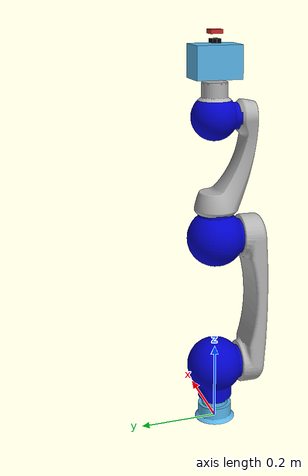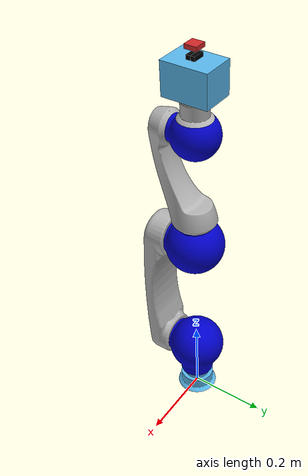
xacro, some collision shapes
<?xml version="1.0" ?>
<!-- |    This document was autogenerated by xacro from lwa4p_pg70.urdf.xacro          | -->
<!-- |    EDITING THIS FILE BY HAND IS NOT RECOMMENDED                                 | -->
<robot name="lwa4p_pg70" xmlns:xacro="http://ros.org/wiki/xacro">
    <material name="Schunk/LightGrey">
    <color rgba="0.7 0.7 0.7 1.0"/>
  </material>
  <material name="Schunk/DarkGrey">
    <color rgba="0.4 0.4 0.4 1.0"/>
  </material>
  <material name="Schunk/Black">
    <color rgba="0.0 0.0 0.0 1.0"/>
  </material>
  <material name="Schunk/DarkGolden">
    <color rgba="0.4 0.4 0.3 1.0"/>
  </material>
  <material name="Schunk/Blue">
    <color rgba="0.0 0.0 0.8 1.0"/>
  </material>
  <!-- Used for fixing robot to Gazebo -->
  <link name="world"/>
  <!-- joint between base_link and lwa4p_extended_connector_link -->
  <joint name="arm_podest_joint" type="fixed">
    <origin rpy="0 0 0" xyz="0 0 0.052"/>
    <parent link="world"/>
    <child link="arm_podest_link"/>
  </joint>
  <link name="arm_podest_link">
    <inertial>
      <mass value="0.01"/>
      <origin xyz="0 0 0"/>
      <inertia ixx="0.001" ixy="0.0" ixz="0.0" iyy="0.001" iyz="0.0" izz="0.001"/>
    </inertial>
    <visual>
      <origin rpy="0 3.141592653589793 0" xyz="0 0 0"/>
      <geometry>
        <mesh filename="package://lwa4p_pg70/urdf/meshes/lwa4p/arm_base_link.dae"/>
      </geometry>
    </visual>
    <collision>
      <origin rpy="0 3.141592653589793 0" xyz="0 0 0"/>
      <geometry>
        <mesh filename="package://lwa4p_pg70/urdf/meshes/lwa4p/arm_base_link.dae"/>
      </geometry>
    </collision>
  </link>
  <joint name="arm_base_joint" type="fixed">
    <origin rpy="0 0 0" xyz="0 0 0.10"/>
    <parent link="arm_podest_link"/>
    <child link="arm_base_link"/>
  </joint>
  <link name="arm_base_link">
    <inertial>
      <mass value="0.01"/>
      <origin xyz="0 0 0"/>
      <inertia ixx="0.001" ixy="0.0" ixz="0.0" iyy="0.001" iyz="0.0" izz="0.001"/>
    </inertial>
  </link>
  <!-- joint between arm_0_link and arm_1_link -->
  <joint name="arm_1_joint" type="revolute">
    <origin rpy="0 0 0" xyz="0 0 0"/>
    <parent link="arm_base_link"/>
    <child link="arm_1_link"/>
    <axis xyz="0 0 1"/>
    <limit effort="370" lower="-2.947" upper="2.947" velocity="1.26"/>
    <!--safety_controller k_position="20" k_velocity="50" soft_lower_limit="${-6.28 + 0.01}" soft_upper_limit="${6.28 - 0.01}" /-->
  </joint>
  <link name="arm_1_link">

      <inertial>
        <origin xyz="0 0 0" rpy="0 0 0" />
        <mass value="0.29364"/>
        <inertia ixx="0.01" ixy="0" ixz="0" iyy="0.01" iyz="0" izz="0.01" />
      </inertial>

    <visual>
      <origin rpy="0 0 0" xyz="0 0 0"/>
      <geometry>
        <mesh filename="package://lwa4p_pg70/urdf/meshes/lwa4p/arm_1_link.dae"/>
      </geometry>
      <material name="Schunk/Blue"/>
    </visual>
    <collision>
      <origin rpy="0 0 0" xyz="0 0 0"/>
      <geometry>
        <mesh filename="package://lwa4p_pg70/urdf/meshes/lwa4p/arm_1_link.dae"/>
      </geometry>
    </collision>
  </link>
  <!-- joint between arm_1_link and arm_2_link -->
  <joint name="arm_2_joint" type="revolute">
    <origin rpy="1.5708 0 0" xyz="0 0 0"/>
    <parent link="arm_1_link"/>
    <child link="arm_2_link"/>
    <axis xyz="0 0 1"/>
    <limit effort="370" lower="-2.947" upper="2.947" velocity="1.26"/>
    <!--safety_controller k_position="20" k_velocity="50" soft_lower_limit="${-2.09 + 0.01}" soft_upper_limit="${2.09 - 0.01}" /-->
  </joint>
  <link name="arm_2_link">

      <inertial>
        <origin xyz="0 0 0" rpy="0 0 0"/>
        <mass value="1.68311"/>
        <inertia ixx="0.03" ixy="0" ixz="0" iyy="0.03" iyz="0" izz="0.03" />
      </inertial>

    <visual>
      <origin rpy="0 0 0" xyz="0 0 0"/>
      <geometry>
        <mesh filename="package://lwa4p_pg70/urdf/meshes/lwa4p/arm_2_link.dae"/>
      </geometry>
      <material name="Schunk/LightGrey"/>
    </visual>
    <collision>
      <origin rpy="0 0 0" xyz="0 0 0"/>
      <geometry>
        <mesh filename="package://lwa4p_pg70/urdf/meshes/lwa4p/arm_2_link.dae"/>
      </geometry>
    </collision>
  </link>
  <!-- joint between arm_2_link and arm_3_link -->
  <joint name="arm_3_joint" type="revolute">
    <origin rpy="0 3.14159 0" xyz="0 0.350 0"/>
    <parent link="arm_2_link"/>
    <child link="arm_3_link"/>
    <axis xyz="0 0 1"/>
    <limit effort="176" lower="-2.694" upper="2.694" velocity="1.26"/>
    <!--safety_controller k_position="20" k_velocity="25" soft_lower_limit="${-6.28 + 0.01}" soft_upper_limit="${6.28 - 0.01}" /-->
  </joint>
  <link name="arm_3_link">

      <inertial>
        <origin xyz="0 0 0" rpy="0 0 0"/>
        <mass value="2.1"/>
        <inertia ixx="0.03" ixy="0" ixz="0" iyy="0.03" iyz="0" izz="0.03" />
      </inertial>

    <visual>
      <origin rpy="0 0 0" xyz="0 0 0"/>
      <geometry>
        <mesh filename="package://lwa4p_pg70/urdf/meshes/lwa4p/arm_3_link.dae"/>
      </geometry>
      <material name="Schunk/Blue"/>
    </visual>
    <collision>
      <origin rpy="0 0 0" xyz="0 0 0"/>
      <geometry>
        <mesh filename="package://lwa4p_pg70/urdf/meshes/lwa4p/arm_3_link.dae"/>
      </geometry>
    </collision>
  </link>
  <!-- joint between arm_3_link and arm_4_link -->
  <joint name="arm_4_joint" type="revolute">
    <origin rpy="-1.5708 3.14159 0" xyz="0 0 0"/>
    <parent link="arm_3_link"/>
    <child link="arm_4_link"/>
    <axis xyz="0 0 1"/>
    <limit effort="176" lower="-2.947" upper="2.947" velocity="1.26"/>
    <!--safety_controller k_position="20" k_velocity="25" soft_lower_limit="${-2.09 + 0.01}" soft_upper_limit="${2.09 - 0.01}" /-->
  </joint>
  <link name="arm_4_link">

      <inertial>
        <origin xyz="0 0 0" rpy="0 0 0"/>
        <mass value="1.68311"/>
        <inertia ixx="0.03" ixy="0" ixz="0" iyy="0.03" iyz="0" izz="0.03" />
      </inertial>

    <visual>
      <origin rpy="0 0 0" xyz="0 0 0"/>
      <geometry>
        <mesh filename="package://lwa4p_pg70/urdf/meshes/lwa4p/arm_4_link.dae"/>
      </geometry>
      <material name="Schunk/LightGrey"/>
    </visual>
    <collision>
      <origin rpy="0 0 0" xyz="0 0 0"/>
      <geometry>
        <mesh filename="package://lwa4p_pg70/urdf/meshes/lwa4p/arm_4_link.dae"/>
      </geometry>
    </collision>
  </link>
  <!-- joint between arm_4_link and arm_5_link -->
  <joint name="arm_5_joint" type="revolute">
    <origin rpy="1.5708 0 3.14159" xyz="0 0.005263 0.305"/>
    <parent link="arm_4_link"/>
    <child link="arm_5_link"/>
    <axis xyz="0 0 1"/>
    <limit effort="41.6" lower="-2.947" upper="2.947" velocity="1.26"/>
    <!--safety_controller k_position="20" k_velocity="25" soft_lower_limit="${-6.28 + 0.01}" soft_upper_limit="${6.28 - 0.01}" /-->
  </joint>
  <link name="arm_5_link">

      <inertial>
        <origin xyz="0 0 0" rpy="0 0 0"/>
        <mass value="0.807"/>
        <inertia ixx="0.03" ixy="0" ixz="0" iyy="0.03" iyz="0" izz="0.03" />
      </inertial>

    <visual>
      <origin rpy="0 0 0" xyz="0 0 0"/>
      <geometry>
        <mesh filename="package://lwa4p_pg70/urdf/meshes/lwa4p/arm_5_link.dae"/>
      </geometry>
      <material name="Schunk/Blue"/>
    </visual>
    <collision>
      <origin rpy="0 0 0" xyz="0 0 0"/>
      <geometry>
        <mesh filename="package://lwa4p_pg70/urdf/meshes/lwa4p/arm_5_link.dae"/>
      </geometry>
    </collision>
  </link>
  <!-- joint between arm_5_link and arm_6_link -->
  <joint name="arm_6_joint" type="revolute">
    <origin rpy="-1.5708 0 0" xyz="0 0 0"/>
    <parent link="arm_5_link"/>
    <child link="arm_6_link"/>
    <axis xyz="0 0 1"/>
    <limit effort="20.1" lower="-2.947" upper="2.947" velocity="1.26"/>
    <!--safety_controller k_position="20" k_velocity="25" soft_lower_limit="${-2.09 + 0.01}" soft_upper_limit="${2.09 - 0.01}" /-->
  </joint>
  <link name="arm_6_link">

      <inertial>
        <origin xyz="0 0 0" rpy="0 0 0"/>
        <mass value="0.819"/>
        <inertia ixx="0.01" ixy="0" ixz="0" iyy="0.01" iyz="0" izz="0.01" />
      </inertial>

    <visual>
      <origin rpy="0 0 0" xyz="0 0 0"/>
      <geometry>
        <mesh filename="package://lwa4p_pg70/urdf/meshes/lwa4p/arm_6_link.dae"/>
      </geometry>
      <material name="Schunk/LightGrey"/>
    </visual>
    <collision>
      <origin rpy="0 0 0" xyz="0 0 0"/>
      <geometry>
        <mesh filename="package://lwa4p_pg70/urdf/meshes/lwa4p/arm_6_link.dae"/>
      </geometry>
    </collision>
  </link>
  <gazebo reference="arm_0_link">
    <gravity>false</gravity>
    <self_collide>false</self_collide>
    <material value="Schunk/LightGrey"/>
  </gazebo>
  <gazebo reference="arm_1_link">
    <gravity>false</gravity>
    <self_collide>false</self_collide>
    <material value="Schunk/Blue"/>
  </gazebo>
  <gazebo reference="arm_2_link">
    <gravity>false</gravity>
    <self_collide>false</self_collide>
    <material value="Schunk/LightGrey"/>
  </gazebo>
  <gazebo reference="arm_3_link">
    <gravity>false</gravity>
    <self_collide>false</self_collide>
    <material value="Schunk/Blue"/>
  </gazebo>
  <gazebo reference="arm_4_link">
    <gravity>false</gravity>
    <self_collide>false</self_collide>
    <material value="Schunk/LightGrey"/>
  </gazebo>
  <gazebo reference="arm_5_link">
    <gravity>false</gravity>
    <self_collide>false</self_collide>
    <material value="Schunk/Blue"/>
  </gazebo>
  <gazebo reference="arm_6_link">
    <gravity>false</gravity>
    <self_collide>false</self_collide>
    <material value="Schunk/LightGrey"/>
  </gazebo>
  <joint name="arm_palm_joint" type="fixed">
    <origin rpy="0 0 0" xyz="0 0 0.10"/>
    <parent link="arm_6_link"/>
    <child link="arm_palm_link"/>
  </joint>
  <link name="arm_palm_link">
    <inertial>
      <origin rpy="0 0 0" xyz="0 0 0"/>
      <mass value="1"/>
      <inertia ixx="0.01" ixy="0" ixz="0" iyy="0.01" iyz="0" izz="0.01"/>
    </inertial>
    <visual>
      <geometry>
        <mesh filename="package://lwa4p_pg70/urdf/meshes/pg70/pg70.dae"/>
      </geometry>
    </visual>
    <collision>
      <origin rpy="0 0 0" xyz="0 0 0.03145"/>
      <geometry>
        <box size="0.082 0.114 0.080"/>
      </geometry>
    </collision>
  </link>
  <joint name="arm_finger_left_joint" type="prismatic">
    <origin rpy="0 0 0" xyz="0 0.0055 0.0789"/>
    <parent link="arm_palm_link"/>
    <child link="arm_finger_left_link"/>
    <axis xyz="0 1 0"/>
    <limit effort="10" lower="-0.001" upper="0.0301" velocity="0.041"/>
  </joint>
  <link name="arm_finger_left_link">
    <inertial>
      <origin rpy="0 0 0" xyz="0 0 0"/>
      <mass value="1"/>
      <inertia ixx="0.01" ixy="0" ixz="0" iyy="0.01" iyz="0" izz="0.01"/>
    </inertial>
    <visual>
      <geometry>
        <box size="0.03 0.01 0.01"/>
      </geometry>
      <material name="black">
        <color rgba="0 0 0 1"/>
      </material>
    </visual>
    <collision>
      <geometry>
        <box size="0.03 0.01 0.01"/>
      </geometry>
      <material name="black">
        <color rgba="0 0 0 1"/>
      </material>
    </collision>
  </link>
    <joint name="camera_joint" type="fixed">
      <parent link="arm_palm_link"/>
      <child link="camera_link"/>
      <origin xyz="0 0 0.1" rpy="0 ${-pi/2} 0"/>
  </joint>

  <link name="camera_link">
      <visual>
          <geometry>
              <box size="0.010 0.03 0.03"/>
          </geometry>
          <material name="red"/>
      </visual>
  </link>
  <gazebo reference="camera_link">
        <material>Gazebo/Red</material>

        <sensor name="camera" type="camera">
            <pose> 0 0 0 0 0 0 </pose>
            <visualize>true</visualize>
            <update_rate>10</update_rate>
            <camera>
                <horizontal_fov>1.089</horizontal_fov>
                <image>
                    <format>R8G8B8</format>
                    <width>640</width>
                    <height>480</height>
                </image>
                <clip>
                    <near>0.05</near>
                    <far>8.0</far>
                </clip>
            </camera>
            <plugin name="camera_controller" filename="libgazebo_ros_camera.so">
                <frame_name>camera_link_optical</frame_name>
            </plugin>
        </sensor>
    </gazebo>

  <joint name="camera_optical_joint" type="fixed">
        <parent link="camera_link"/>
        <child link="camera_link_optical"/>
        <origin xyz="0 0 0" rpy="0 0 0"/>
    </joint>

    <link name="camera_link_optical"></link>

  <joint name="arm_finger_right_joint" type="prismatic">
    <origin rpy="-0 0 0" xyz="0 -0.0055 0.0789"/>
    <parent link="arm_palm_link"/>
    <child link="arm_finger_right_link"/>
    <axis xyz="0 -1 0"/>
    <mimic joint="arm_finger_left_joint" multiplier="1" offset="0"/>
    <limit effort="10" lower="-0.001" upper="0.0301" velocity="0.041"/>
  </joint>
  <link name="arm_finger_right_link">
    <inertial>
      <origin rpy="0 0 0" xyz="0 0 0"/>
      <mass value="1"/>
      <inertia ixx="0.01" ixy="0" ixz="0" iyy="0.01" iyz="0" izz="0.01"/>
    </inertial>
    <visual>
      <geometry>
        <box size="0.03 0.01 0.01"/>
      </geometry>
      <material name="black">
        <color rgba="0 0 0 1"/>
      </material>
    </visual>
    <collision>
      <geometry>
        <box size="0.03 0.01 0.01"/>
      </geometry>
      <material name="black">
        <color rgba="0 0 0 1"/>
      </material>
    </collision>
  </link>
  <gazebo reference="arm_palm_link">
    <gravity>true</gravity>
    <self_collide>false</self_collide>
  </gazebo>
  <gazebo reference="arm_finger_left_link">
    <gravity>true</gravity>
    <self_collide>false</self_collide>
  </gazebo>
  <gazebo reference="arm_finger_right_link">
    <gravity>true</gravity>
    <self_collide>false</self_collide>
  </gazebo>

  <ros2_control name="GazeboSystem" type="system">
  <hardware>
     <plugin>gazebo_ros2_control/GazeboSystem</plugin>
  </hardware>

# Position Controller
  <joint name="arm_1_joint">
      <command_interface name="position">
          <param name="min">-3.14</param>
          <param name="max">3.14</param>
      </command_interface>
      <state_interface name="position"/>
      <state_interface name="velocity"/>
  </joint>
  <joint name="arm_2_joint">
      <command_interface name="position">
          <param name="min">-3.14</param>
          <param name="max">3.14</param>
      </command_interface>
      <state_interface name="position"/>
      <state_interface name="velocity"/>
  </joint>
  <joint name="arm_3_joint">
      <command_interface name="position">
          <param name="min">-3.14</param>
          <param name="max">3.14</param>
      </command_interface>
      <state_interface name="position"/>
      <state_interface name="velocity"/>
  </joint>
  <joint name="arm_4_joint">
      <command_interface name="position">
          <param name="min">-3.14</param>
          <param name="max">3.14</param>
      </command_interface>
      <state_interface name="position"/>
      <state_interface name="velocity"/>
  </joint>
  <joint name="arm_5_joint">
      <command_interface name="position">
          <param name="min">-3.14</param>
          <param name="max">3.14</param>
      </command_interface>
      <state_interface name="position"/>
      <state_interface name="velocity"/>
  </joint>
  <joint name="arm_6_joint">
      <command_interface name="position">
          <param name="min">-3.14</param>
          <param name="max">3.14</param>
      </command_interface>
      <state_interface name="position"/>
      <state_interface name="velocity"/>
  </joint>
  <joint name="arm_finger_left_joint">
      <command_interface name="position">
          <param name="min">-0.03</param>
          <param name="max">0.03</param>
      </command_interface>
      <state_interface name="position"/>
      <state_interface name="velocity"/>
  </joint>
 </ros2_control>
 <gazebo>
    <plugin filename="libgazebo_ros2_control.so" name="gazebo_ros2_control">
        <parameters>$(find lwa4p_pg70)/config/control.yaml</parameters>
    </plugin>
</gazebo>
</robot>
